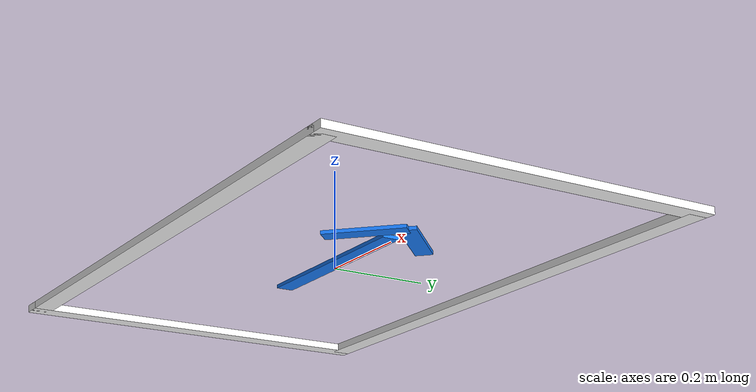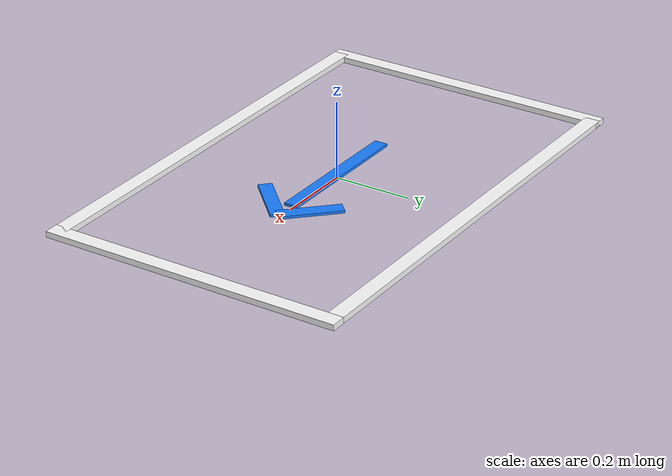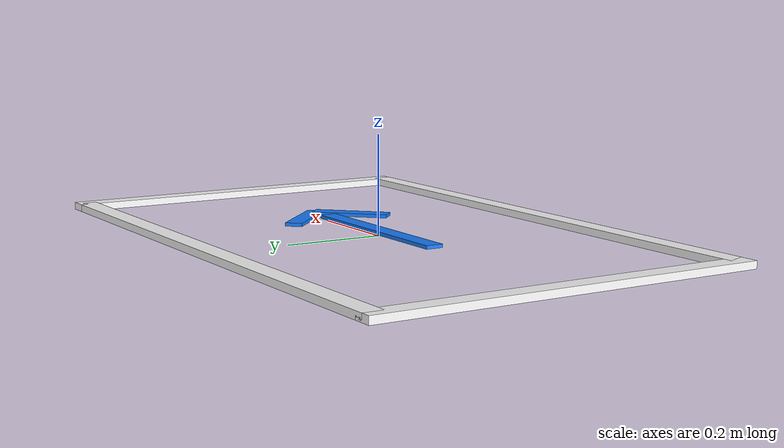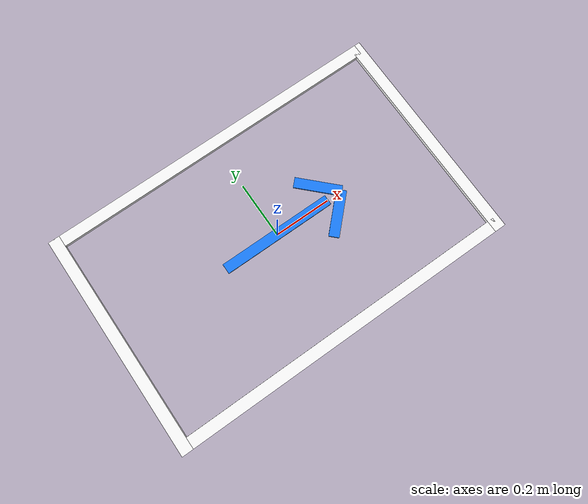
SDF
<?xml version="1.0"?>
<sdf version="1.6">

  <model name="autofactory_parking_slot">

    <!--
      停车位固定在地面上，不会被机器人推动。
    -->
    <static>true</static>

    <!--
      停车位模型原点位于车位中心。
      局部+X方向表示机器人最终车头方向。
    -->
    <pose>0 0 0 0 0 0</pose>

    <link name="parking_slot_link">

      <!-- 左侧白色长边 -->
      <visual name="left_boundary_visual">
        <pose>0 0.375 0.0075 0 0 0</pose>

        <geometry>
          <box>
            <size>1.20 0.04 0.015</size>
          </box>
        </geometry>

        <material>
          <ambient>1 1 1 1</ambient>
          <diffuse>1 1 1 1</diffuse>
          <specular>0.05 0.05 0.05 1</specular>
        </material>

        <cast_shadows>false</cast_shadows>
      </visual>

      <!-- 右侧白色长边 -->
      <visual name="right_boundary_visual">
        <pose>0 -0.375 0.0075 0 0 0</pose>

        <geometry>
          <box>
            <size>1.20 0.04 0.015</size>
          </box>
        </geometry>

        <material>
          <ambient>1 1 1 1</ambient>
          <diffuse>1 1 1 1</diffuse>
          <specular>0.05 0.05 0.05 1</specular>
        </material>

        <cast_shadows>false</cast_shadows>
      </visual>

      <!-- 入口侧白色短边 -->
      <visual name="entry_boundary_visual">
        <pose>-0.60 0 0.0075 0 0 0</pose>

        <geometry>
          <box>
            <size>0.04 0.79 0.015</size>
          </box>
        </geometry>

        <material>
          <ambient>1 1 1 1</ambient>
          <diffuse>1 1 1 1</diffuse>
          <specular>0.05 0.05 0.05 1</specular>
        </material>

        <cast_shadows>false</cast_shadows>
      </visual>

      <!-- 末端白色短边 -->
      <visual name="rear_boundary_visual">
        <pose>0.60 0 0.0075 0 0 0</pose>

        <geometry>
          <box>
            <size>0.04 0.79 0.015</size>
          </box>
        </geometry>

        <material>
          <ambient>1 1 1 1</ambient>
          <diffuse>1 1 1 1</diffuse>
          <specular>0.05 0.05 0.05 1</specular>
        </material>

        <cast_shadows>false</cast_shadows>
      </visual>

      <!-- 蓝色方向箭头的主干，指向局部+X -->
      <visual name="direction_arrow_shaft_visual">
        <pose>0 0 0.0105 0 0 0</pose>

        <geometry>
          <box>
            <size>0.40 0.035 0.007</size>
          </box>
        </geometry>

        <material>
          <ambient>0.10 0.50 1.00 1</ambient>
          <diffuse>0.10 0.50 1.00 1</diffuse>
        </material>

        <cast_shadows>false</cast_shadows>
      </visual>

      <!-- 箭头上半部分 -->
      <visual name="direction_arrow_head_upper_visual">
        <pose>0.20 0.055 0.0105 0 0 -0.78539816339</pose>

        <geometry>
          <box>
            <size>0.16 0.035 0.007</size>
          </box>
        </geometry>

        <material>
          <ambient>0.10 0.50 1.00 1</ambient>
          <diffuse>0.10 0.50 1.00 1</diffuse>
        </material>

        <cast_shadows>false</cast_shadows>
      </visual>

      <!-- 箭头下半部分 -->
      <visual name="direction_arrow_head_lower_visual">
        <pose>0.20 -0.055 0.0105 0 0 0.78539816339</pose>

        <geometry>
          <box>
            <size>0.16 0.035 0.007</size>
          </box>
        </geometry>

        <material>
          <ambient>0.10 0.50 1.00 1</ambient>
          <diffuse>0.10 0.50 1.00 1</diffuse>
        </material>

        <cast_shadows>false</cast_shadows>
      </visual>

    </link>

  </model>

</sdf>
